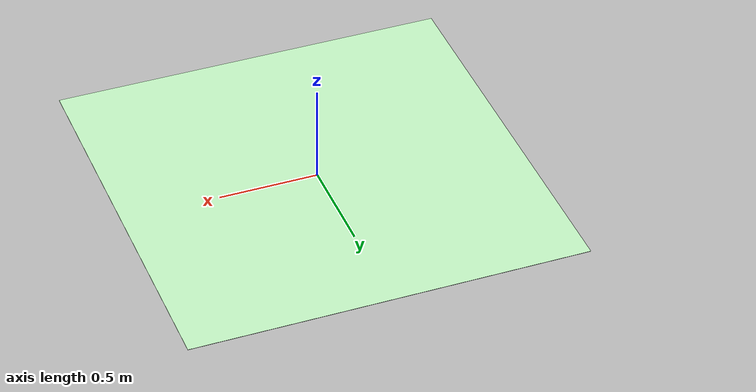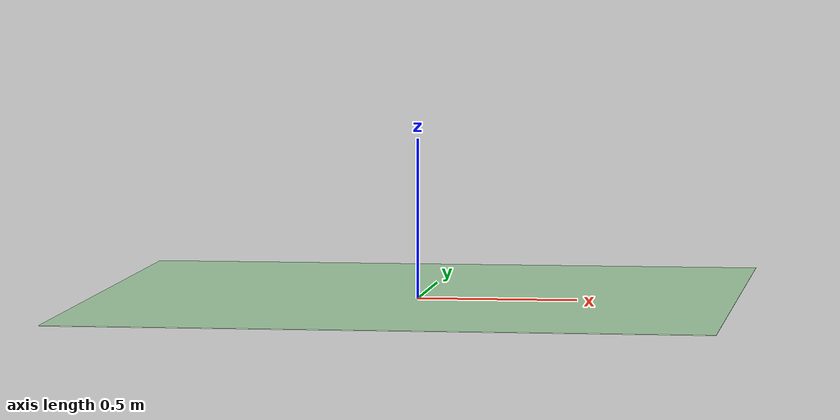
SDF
<?xml version='1.0'?>
<sdf version='1.6'>
    <model name='logoPadGreen'>
        <static>true</static>
        <link name='link'>
            <collision name='collision'>
                <geometry>
                    <plane>
                        <normal>0 0 1</normal>
                        <size>2 2</size>
                    </plane>
                </geometry>
                <surface>
                    <friction>
                      <ode>
                        <mu>0.5</mu>
                        <mu2>.5</mu2>
                    </ode>
                  </friction>
                </surface>
            </collision>

            <visual name='visual'>
                <pose>0 0 0.01 0 0 0</pose>

                <cast_shadows>false</cast_shadows>
                <geometry>
                    <plane>
                        <normal>0 0 1</normal>
                        <size>2 2</size>
                    </plane>
                </geometry>
                    <material>
                        <ambient>0.8 1.0 0.8 1.0</ambient>
                        <diffuse>0.8 1.0 0.8 1.0</diffuse>
                        <specular>0.1 0.1 0.1 1.0</specular>
                        <pbr>
                            <metal>
                                <albedo_map>model://logoPadGreen/materials/textures/start_pad.png</albedo_map>
                            </metal>
                        </pbr>
                    </material>
            </visual>
        </link>
    </model>
</sdf>
